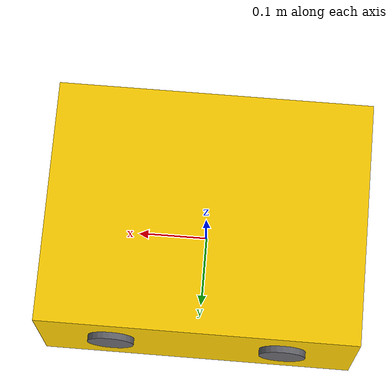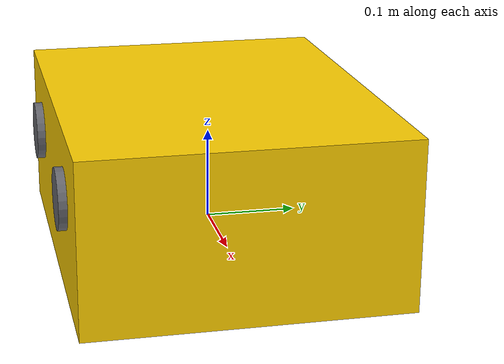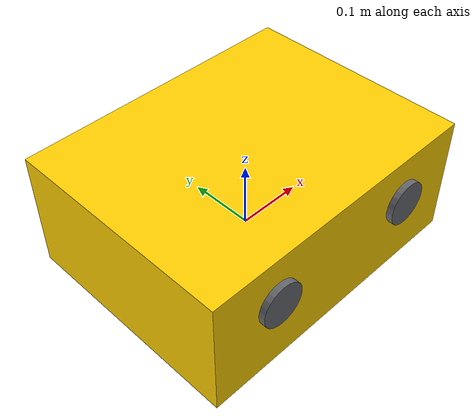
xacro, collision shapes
<?xml version="1.0"?>
<robot name="MiniUGV_10A" xmlns:xacro="http://ros.org/wiki/xacro">

    <!--property list -->
    <xacro:property name="M_PI" value="3.1415926535897931" />
    <xacro:property name="base_mass"   value="20" />
    <xacro:property name="base_length" value="0.445"/>
    <xacro:property name="base_width" value="0.345"/>
    <xacro:property name="base_height" value="0.184"/>
    <xacro:property name="earth_space" value="0.055" />

    <!-- Base link -->
    <link name="base_link">
      <visual>
        <origin xyz="0 0 0" rpy="0 0 0" />
        <geometry>
            <mesh filename="file://$(find lingao_description_ros2)/meshes/LA_MiniUGV_10A/mobile_base.stl" scale="1 1 1"/>
        </geometry>
        <material name="yellow">
          <color rgba="1.0 0.812 0.0 1.0" />
        </material>
      </visual>
      <collision>
            <origin xyz="0 0 0" rpy="0 0 0" />
            <geometry>
                <box size="${base_length} ${base_width} ${base_height}"/>
            </geometry>
        </collision>
    </link>

    <link name="base_footprint"/>

    <joint name="base_footprint_joint" type="fixed">
      <parent link="base_footprint" />
      <child link="base_link" />
      <origin xyz="0 0 ${earth_space}" />
    </joint>

    <!-- WHELL -->
    <xacro:property name="wheel_radius" value="0.0325" />
    <xacro:property name="wheel_length" value="0.0152" />
    <xacro:property name="wheel_base"   value="0.24"/>
    <xacro:property name="wheel_track"  value="0.333"/>
    <xacro:property name="wheel_joint_z"  value="0.02"/>
    <xacro:property name="wheel_mass"   value="1" />

    <xacro:macro name="base_wheel" params="link_name parent_link reflect mass *joint_pose">
        <link name="${link_name}_wheel_link">
            <visual>
                <origin xyz="0 0 0" rpy="0 0 0" />
                <geometry>
                    <mesh filename="file://$(find lingao_description_ros2)/meshes/LA_MiniUGV_10A/mobile_whell.stl" />
                </geometry>
                <material name="Poppy">
                    <color rgba="0.4 0.4039 0.42745098 1.0"/>
                </material>
            </visual>
            <collision>
              <origin xyz="0 ${wheel_length/2} 0" rpy="${pi/2} 0 0" />
              <geometry>
                  <cylinder length="${wheel_length}" radius="${wheel_radius}" />
              </geometry>
            </collision>
            <inertial>
                <origin xyz="0 0 0" rpy="0 0 0"/>
                <mass value="${mass}"/>
                <inertia ixx="${(2/5) * mass * (wheel_radius * wheel_radius)}" ixy="0" ixz="0"
                        iyy="${(2/5) * mass * (wheel_radius * wheel_radius)}" iyz="0"
                        izz="${(2/5) * mass * (wheel_radius * wheel_radius)}" />
            </inertial>
        </link>

        <joint name="${link_name}_wheel" type="continuous">
            <parent link="${parent_link}"/>
            <child link="${link_name}_wheel_link"/>
            <xacro:insert_block name="joint_pose"/>
            <axis xyz="0 ${reflect*1} 0"/>
        </joint>
    </xacro:macro>

    <xacro:base_wheel parent_link="base_link" link_name="front_left" reflect="1" mass="${wheel_mass}">
        <origin xyz="${wheel_base/2} ${wheel_track/2} ${wheel_joint_z}" rpy="0 0 0" />
    </xacro:base_wheel>

    <xacro:base_wheel parent_link="base_link" link_name="front_right" reflect="-1" mass="${wheel_mass}">
        <origin xyz="${wheel_base/2} ${-wheel_track/2} ${wheel_joint_z}" rpy="0 0 ${M_PI}" />
    </xacro:base_wheel>

    <xacro:base_wheel parent_link="base_link" link_name="rear_left" reflect="1" mass="${wheel_mass}">
        <origin xyz="${-wheel_base/2} ${wheel_track/2} ${wheel_joint_z}" rpy="0 0 0" />
    </xacro:base_wheel>

    <xacro:base_wheel parent_link="base_link" link_name="rear_right" reflect="-1" mass="${wheel_mass}">
        <origin xyz="${-wheel_base/2} ${-wheel_track/2} ${wheel_joint_z}" rpy="0 0 ${M_PI}" />
    </xacro:base_wheel>

</robot>
